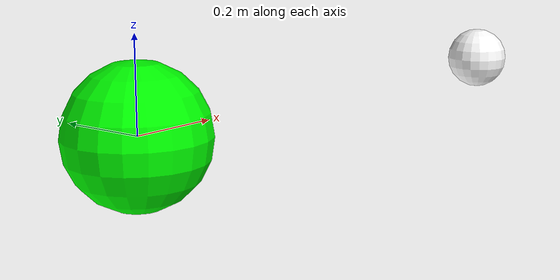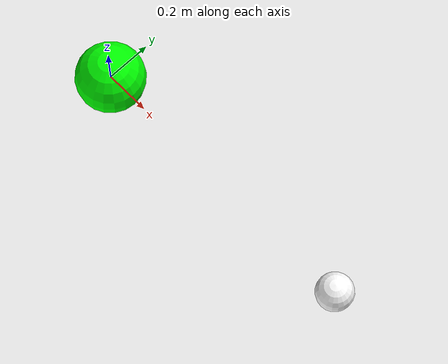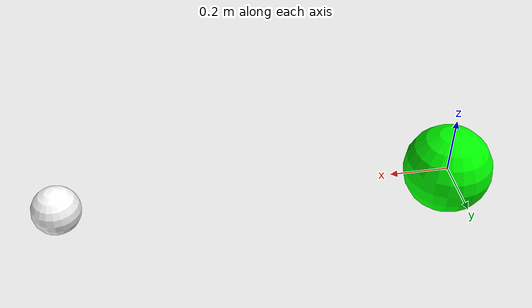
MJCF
<mujoco model="arm3d">

    <compiler inertiafromgeom="true" angle="radian" coordinate="local" />
    <option timestep="0.01" gravity="0 0 0" iterations="20" integrator="RK4" />
    <default>
        <joint limited="true" range="-3.14159 3.14159" armature="0.04" damping="1" />
        <geom friction=".5 .1 .1" margin="0.002" condim="1" contype="0" conaffinity="0" />
        <motor forcelimited="true" forcerange="-1 1"/>
    </default>

    <worldbody>
        <body name="robot" pos="0 0.0 0.0">
            <geom type="sphere" rgba="0 1 0 1" pos="0 0 0" size="0.15" contype="1" conaffinity="1" density="20" />
            <joint name="robotx" type="slide" pos="0.05 0.05 0.05" axis="1 0 0" range="-10.3213 10.3" damping="0.005"/>
            <joint name="roboty" type="slide" pos="0.05 0.05 0.05" axis="0 1 0" range="-10.3213 10.3" damping="0.005"/>
            <joint name="robotz" type="slide" pos="0.1 0.05 0.05" axis="0 0 1" range="-10.3213 10.3" damping="0.005"/>
            <body name="site" pos="0 0 0">
                <site name="end_eff" pos="0.025 0.025 0.025" size="0.01" />
            </body>
        </body>

        <body name="object" pos="1.3 0.0 0.0">
            <geom rgba="1. 1. 1. 1" type="sphere" size="0.08 0.08 0.08" density='1' contype="1" conaffinity="1"/>
            <joint name="obj_slidez" type="slide" pos="0.1 0.05 0.05" axis="0 0 1" range="-10.3213 10.3" damping="0.005"/>
            <joint name="obj_slidex" type="slide" pos="0.05 0.05 0.05" axis="1 0 0" range="-10.3213 10.3" damping="0.005"/>
            <body name="distal_10" pos="0 0 0">
                <site name="obj_pos" pos="0.025 0.025 0.025" size="0.01" />
            </body>
        </body>

        <body name="goal" pos="0 0 0">
            <geom rgba="1. 0. 0. 1" type="box" size="0.05 0.05 0.05" density='0.00001' contype="0" conaffinity="0"/>
            <site name="goal pos1" pos="0 0 0" size="0.01" />
        </body>

        <body name="distractor_1" pos="0 0 0">
            <geom rgba="1. 1. 0. 1" type="box" size="0.05 0.05 0.05" density='0.00001' contype="0" conaffinity="0"/>
            <site name="goal pos2" pos="0 0 0" size="0.01" />
        </body>

        <body name="distractor_2" pos="0 0 0">
            <geom rgba="0. 1. 0. 1" type="box" size="0.05 0.05 0.05" density='0.00001' contype="0" conaffinity="0"/>
            <site name="goal pos3" pos="0 0 0" size="0.01" />
        </body>
    </worldbody>

    <actuator>
        <motor joint="robotx" ctrlrange="-100.0 100.0" ctrllimited="true" />
        <motor joint="roboty" ctrlrange="-100.0 100.0" ctrllimited="true" />
        <motor joint="robotz" ctrlrange="-100.0 100.0" ctrllimited="true" />
    </actuator>

</mujoco>
